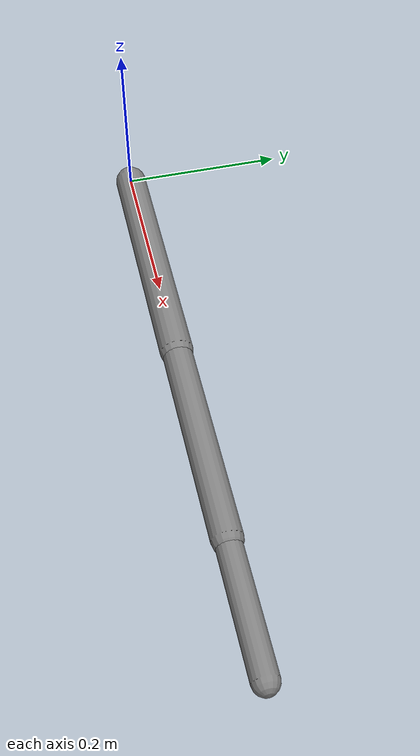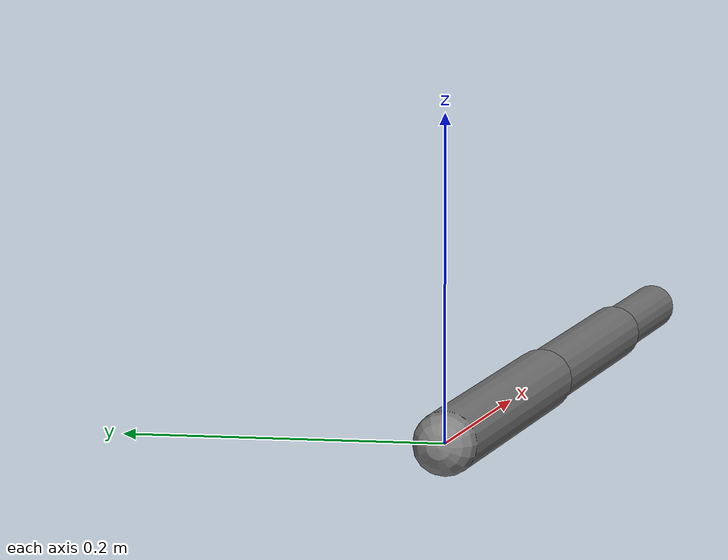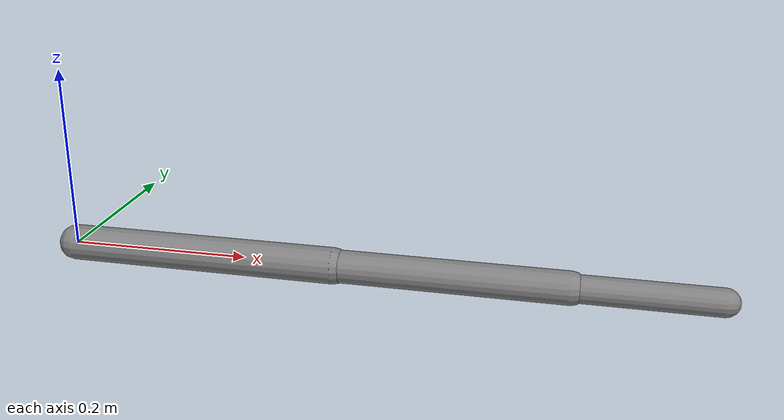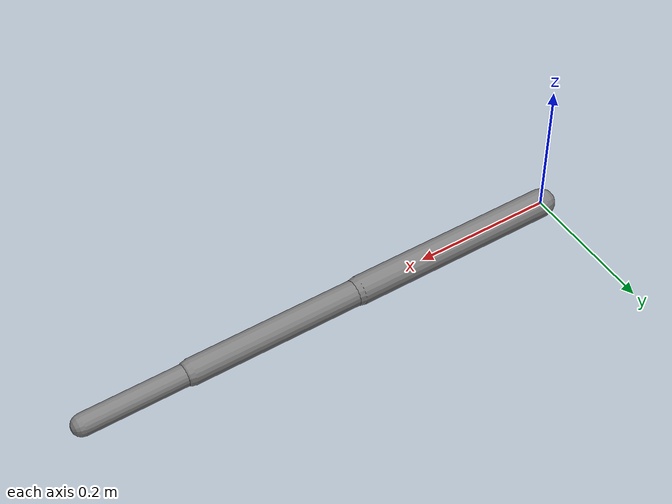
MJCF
<mujoco model="planar_3dof">
  <option gravity="0 0 0"/>

  <worldbody>
    <body name="link1" pos="0 0 0">
      <joint name="j1" type="hinge" axis="0 0 1"/>
      <geom type="capsule" fromto="0 0 0 0.3 0 0" size="0.02"/>

      <body name="link2" pos="0.3 0 0">
        <joint name="j2" type="hinge" axis="0 0 1"/>
        <geom type="capsule" fromto="0 0 0 0.25 0 0" size="0.018"/>

        <body name="link3" pos="0.25 0 0">
          <joint name="j3" type="hinge" axis="0 0 1"/>
          <geom type="capsule" fromto="0 0 0 0.15 0 0" size="0.015"/>
          <site name="end_site" pos="0.15 0 0" size="0.01"/>
        </body>
      </body>
    </body>
  </worldbody>
</mujoco>
